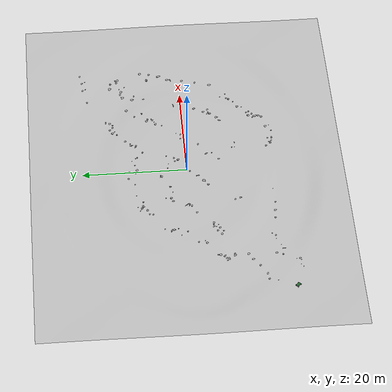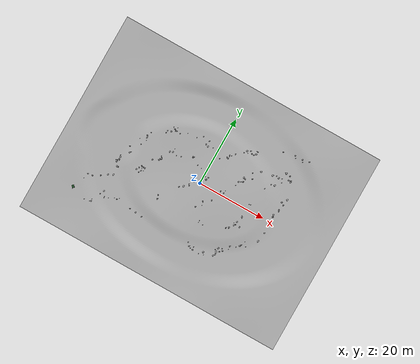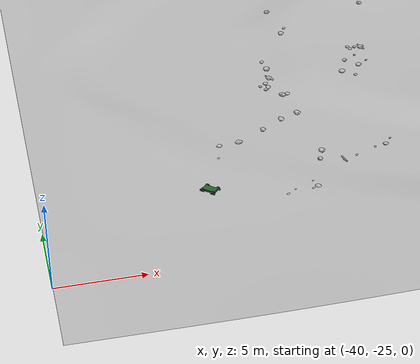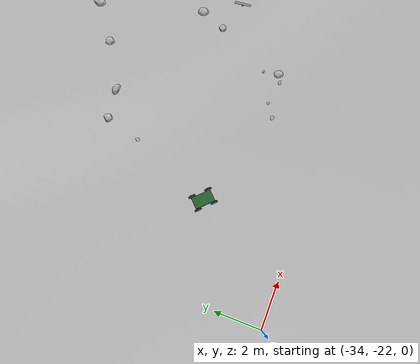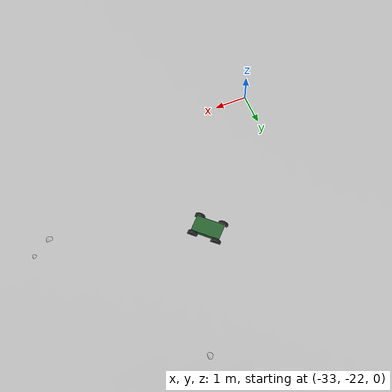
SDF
<?xml version='1.0' encoding='utf-8'?>
<sdf version="1.9">
  <world name="nomad_forest">
    <gravity>0 0 -9.81</gravity>
    <physics name="nomad_physics" type="ignored">
      <max_step_size>0.0016666666666666668</max_step_size>
      <real_time_factor>1</real_time_factor>
    </physics>
    <plugin filename="gz-sim-physics-system" name="gz::sim::systems::Physics" />
    <plugin filename="gz-sim-user-commands-system" name="gz::sim::systems::UserCommands" />
    <plugin filename="gz-sim-scene-broadcaster-system" name="gz::sim::systems::SceneBroadcaster" />
    <plugin filename="gz-sim-sensors-system" name="gz::sim::systems::Sensors">
      <render_engine>ogre2</render_engine>
    </plugin>
    <plugin filename="gz-sim-imu-system" name="gz::sim::systems::Imu" />
    <scene>
      <ambient>0.6 0.6 0.6 1</ambient>
      <background>0.62 0.75 0.86 1</background>
      <shadows>false</shadows>
    </scene>
    <light name="sun" type="directional">
      <pose>0 0 20 0 0 0</pose>
      <diffuse>0.8 0.8 0.8 1</diffuse>
      <specular>0.1 0.1 0.1 1</specular>
      <direction>-0.4 -0.2 -1</direction>
      <cast_shadows>false</cast_shadows>
    </light>
    <gui fullscreen="false">
      <plugin filename="MinimalScene" name="3D View">
        <gz-gui>
          <title>3D View</title>
          <property type="bool" key="showTitleBar">false</property>
          <property type="string" key="state">docked</property>
        </gz-gui>
        <engine>ogre2</engine>
        <scene>scene</scene>
        <ambient_light>0.6 0.6 0.6</ambient_light>
        <background_color>0.62 0.75 0.86</background_color>
        <camera_pose>-43 -38 48 0 0.70 0.72</camera_pose>
      </plugin>
      <plugin filename="GzSceneManager" name="GzSceneManager">
        <gz-gui>
          <property type="string" key="state">floating</property>
          <property type="bool" key="showTitleBar">false</property>
          <property type="bool" key="resizable">false</property>
          <property type="double" key="height">5</property>
          <property type="double" key="width">5</property>
        </gz-gui>
      </plugin>
      <plugin filename="InteractiveViewControl" name="InteractiveViewControl">
        <gz-gui>
          <property type="string" key="state">floating</property>
          <property type="bool" key="showTitleBar">false</property>
          <property type="bool" key="resizable">false</property>
          <property type="double" key="height">5</property>
          <property type="double" key="width">5</property>
        </gz-gui>
      </plugin>
      <plugin filename="CameraTracking" name="CameraTracking">
        <gz-gui>
          <property type="string" key="state">floating</property>
          <property type="bool" key="showTitleBar">false</property>
          <property type="bool" key="resizable">false</property>
          <property type="double" key="height">5</property>
          <property type="double" key="width">5</property>
        </gz-gui>
      </plugin>
      <plugin filename="EntityContextMenuPlugin" name="EntityContextMenuPlugin">
        <gz-gui>
          <property type="string" key="state">floating</property>
          <property type="bool" key="showTitleBar">false</property>
          <property type="bool" key="resizable">false</property>
          <property type="double" key="height">5</property>
          <property type="double" key="width">5</property>
        </gz-gui>
      </plugin>
      <plugin filename="SelectEntities" name="SelectEntities">
        <gz-gui>
          <property type="string" key="state">floating</property>
          <property type="bool" key="showTitleBar">false</property>
          <property type="bool" key="resizable">false</property>
          <property type="double" key="height">5</property>
          <property type="double" key="width">5</property>
        </gz-gui>
      </plugin>
      <plugin filename="WorldControl" name="WorldControl">
        <gz-gui>
          <property type="string" key="state">floating</property>
          <property type="bool" key="showTitleBar">false</property>
          <property type="bool" key="resizable">false</property>
          <property type="double" key="height">72</property>
          <property type="double" key="width">180</property>
          <property type="double" key="z">1</property>
          <anchors target="3D View">
            <line own="left" target="left" />
            <line own="bottom" target="bottom" />
          </anchors>
        </gz-gui>
        <play_pause>true</play_pause>
        <step>true</step>
        <start_paused>false</start_paused>
      </plugin>
      <plugin filename="WorldStats" name="WorldStats">
        <gz-gui>
          <property type="string" key="state">floating</property>
          <property type="bool" key="showTitleBar">false</property>
          <property type="bool" key="resizable">false</property>
          <property type="double" key="height">110</property>
          <property type="double" key="width">290</property>
          <property type="double" key="z">1</property>
          <anchors target="3D View">
            <line own="right" target="right" />
            <line own="bottom" target="bottom" />
          </anchors>
        </gz-gui>
        <sim_time>true</sim_time>
        <real_time>true</real_time>
        <real_time_factor>true</real_time_factor>
        <iterations>true</iterations>
      </plugin>
      <plugin filename="EntityTree" name="EntityTree">
        <gz-gui />
      </plugin>
      <plugin filename="ComponentInspector" name="ComponentInspector">
        <gz-gui />
      </plugin>
    </gui>
    <model name="terrain">
      <static>true</static>
      <pose>0 0 0 0 0 0</pose>
      <link name="link">
        <visual name="dirt_terrain">
          <geometry>
            <mesh>
              <uri>../assets/geometry/terrain.obj</uri>
            </mesh>
          </geometry>
        </visual>
        <collision name="terrain_collision">
          <geometry>
            <mesh>
              <uri>../assets/geometry/terrain.obj</uri>
            </mesh>
          </geometry>
        </collision>
      </link>
    </model>
    <model name="roadside_details">
      <static>true</static>
      <pose>0 0 0 0 0 0</pose>
      <link name="link">
        <visual name="visual_only">
          <geometry>
            <mesh>
              <uri>../assets/geometry/roadside_details.obj</uri>
            </mesh>
          </geometry>
        </visual>
      </link>
    </model>
    <include>
      <uri>../models/nomad_vehicle/model.sdf</uri>
      <name>nomad_vehicle</name>
      <pose>-30.0 -18.0 0.03 0 0 -0.7705162004864949</pose>
    </include>
  </world>
</sdf>

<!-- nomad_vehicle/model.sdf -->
<sdf version="1.10">
  <model name="nomad_vehicle" canonical_link="base_link">
    <!--PROVISIONAL dimensions/masses, no suspension; NOT calibrated motor output.-->
    <static>false</static>
    <self_collide>false</self_collide>
    <link name="base_link">
      <pose relative_to="__model__">0 0 0 0 0 0</pose>
      <inertial>
        <pose>0 0 0.2 0 0 0</pose>
        <mass>30</mass>
        <inertia>
          <ixx>0.661</ixx>
          <iyy>1.84225</iyy>
          <izz>2.43125</izz>
          <ixy>0</ixy>
          <ixz>0</ixz>
          <iyz>0</iyz>
        </inertia>
      </inertial>
      <visual name="base_link_visual">
        <pose>0 0 0.2 0 0 0</pose>
        <geometry>
          <box>
            <size>0.85 0.5 0.12</size>
          </box>
        </geometry>
        <material>
          <ambient>0.15 0.38 0.18 1</ambient>
          <diffuse>0.15 0.38 0.18 1</diffuse>
        </material>
      </visual>
      <collision name="base_link_collision">
        <pose>0 0 0.2 0 0 0</pose>
        <geometry>
          <box>
            <size>0.85 0.5 0.12</size>
          </box>
        </geometry>
      </collision>
      <sensor name="oak_rgb" type="rgbd_camera">
        <pose relative_to="base_link">0.46 0 0.29 0 0 0</pose>
        <always_on>true</always_on>
        <update_rate>30</update_rate>
        <visualize>false</visualize>
        <topic>/nomad/raw/oak/rgbd</topic>
        <gz_frame_id>oak_rgb_optical_frame</gz_frame_id>
        <camera>
          <optical_frame_id>oak_rgb_optical_frame</optical_frame_id>
          <horizontal_fov>1.20427718387609</horizontal_fov>
          <image>
            <width>640</width>
            <height>480</height>
            <format>R8G8B8</format>
          </image>
          <clip>
            <near>0.05</near>
            <far>40</far>
          </clip>
          <depth_camera>
            <clip>
              <near>0.4</near>
              <far>8</far>
            </clip>
          </depth_camera>
          <lens>
            <type>gnomonical</type>
            <intrinsics>
              <fx>465.602889175182</fx>
              <fy>471.026521321236</fy>
              <cx>320</cx>
              <cy>240</cy>
              <s>0</s>
            </intrinsics>
            <projection>
              <p_fx>465.602889175182</p_fx>
              <p_fy>471.026521321236</p_fy>
              <p_cx>320</p_cx>
              <p_cy>240</p_cy>
              <tx>0</tx>
              <ty>0</ty>
            </projection>
          </lens>
        </camera>
      </sensor>
      <sensor name="oak_left" type="camera">
        <pose relative_to="base_link">0.46 0.0375 0.29 0 0 0</pose>
        <always_on>true</always_on>
        <update_rate>30</update_rate>
        <visualize>false</visualize>
        <topic>/nomad/raw/oak/left/image_raw</topic>
        <gz_frame_id>oak_left_optical_frame</gz_frame_id>
        <camera>
          <optical_frame_id>oak_left_optical_frame</optical_frame_id>
          <camera_info_topic>/nomad/raw/oak/left/camera_info</camera_info_topic>
          <horizontal_fov>1.27409035395586</horizontal_fov>
          <image>
            <width>640</width>
            <height>480</height>
            <format>L8</format>
          </image>
          <clip>
            <near>0.05</near>
            <far>40</far>
          </clip>
          <lens>
            <type>gnomonical</type>
            <intrinsics>
              <fx>432.455180142659</fx>
              <fy>432.971461265142</fy>
              <cx>320</cx>
              <cy>240</cy>
              <s>0</s>
            </intrinsics>
            <projection>
              <p_fx>432.455180142659</p_fx>
              <p_fy>432.971461265142</p_fy>
              <p_cx>320</p_cx>
              <p_cy>240</p_cy>
              <tx>0</tx>
              <ty>0</ty>
            </projection>
          </lens>
        </camera>
      </sensor>
      <sensor name="oak_right" type="camera">
        <pose relative_to="base_link">0.46 -0.0375 0.29 0 0 0</pose>
        <always_on>true</always_on>
        <update_rate>30</update_rate>
        <visualize>false</visualize>
        <topic>/nomad/raw/oak/right/image_raw</topic>
        <gz_frame_id>oak_right_optical_frame</gz_frame_id>
        <camera>
          <optical_frame_id>oak_right_optical_frame</optical_frame_id>
          <camera_info_topic>/nomad/raw/oak/right/camera_info</camera_info_topic>
          <horizontal_fov>1.27409035395586</horizontal_fov>
          <image>
            <width>640</width>
            <height>480</height>
            <format>L8</format>
          </image>
          <clip>
            <near>0.05</near>
            <far>40</far>
          </clip>
          <lens>
            <type>gnomonical</type>
            <intrinsics>
              <fx>432.455180142659</fx>
              <fy>432.971461265142</fy>
              <cx>320</cx>
              <cy>240</cy>
              <s>0</s>
            </intrinsics>
            <projection>
              <p_fx>432.455180142659</p_fx>
              <p_fy>432.971461265142</p_fy>
              <p_cx>320</p_cx>
              <p_cy>240</p_cy>
              <tx>-32.4341385106994</tx>
              <ty>0</ty>
            </projection>
          </lens>
        </camera>
      </sensor>
      <sensor name="ydlidar_g2" type="gpu_lidar">
        <pose relative_to="base_link">0.15 0 0.38 0 0 0</pose>
        <topic>/nomad/raw/scan</topic>
        <gz_frame_id>scan</gz_frame_id>
        <always_on>true</always_on>
        <update_rate>10</update_rate>
        <visualize>false</visualize>
        <lidar>
          <scan>
            <horizontal>
              <samples>500</samples>
              <resolution>1</resolution>
              <min_angle>-3.14159265358979</min_angle>
              <max_angle>3.12902628297543</max_angle>
            </horizontal>
            <vertical>
              <samples>1</samples>
              <resolution>1</resolution>
              <min_angle>0</min_angle>
              <max_angle>0</max_angle>
            </vertical>
          </scan>
          <range>
            <min>0.12</min>
            <max>12</max>
            <resolution>0.01</resolution>
          </range>
          <noise>
            <type>gaussian</type>
            <mean>0</mean>
            <stddev>0.01</stddev>
          </noise>
        </lidar>
      </sensor>
      <sensor name="oak_imu" type="imu">
        <pose relative_to="base_link">0.46 0 0.29 0 0 0</pose>
        <always_on>true</always_on>
        <update_rate>200</update_rate>
        <topic>/nomad/raw/oak/imu</topic>
        <gz_frame_id>oak_imu_frame</gz_frame_id>
        <imu />
      </sensor>
    </link>
    <link name="front_left_steering_link">
      <pose relative_to="__model__">0.36 0.3 0.15 0 0 0</pose>
      <inertial>
        <pose>0 0 0 0 0 0</pose>
        <mass>0.3</mass>
        <inertia>
          <ixx>8.6875e-05</ixx>
          <iyy>8.6875e-05</iyy>
          <izz>9.375e-05</izz>
          <ixy>0</ixy>
          <ixz>0</ixz>
          <iyz>0</iyz>
        </inertia>
      </inertial>
      <visual name="front_left_steering_link_visual">
        <pose>0 0 0 0 0 0</pose>
        <geometry>
          <cylinder>
            <radius>0.025</radius>
            <length>0.04</length>
          </cylinder>
        </geometry>
        <material>
          <ambient>0.12 0.12 0.12 1</ambient>
          <diffuse>0.12 0.12 0.12 1</diffuse>
        </material>
      </visual>
    </link>
    <link name="front_left_wheel">
      <pose relative_to="__model__">0.36 0.3 0.15 0 0 0</pose>
      <inertial>
        <pose>0 0 0 0 0 0</pose>
        <mass>1</mass>
        <inertia>
          <ixx>0.00615833333333333</ixx>
          <iyy>0.01125</iyy>
          <izz>0.00615833333333333</izz>
          <ixy>0</ixy>
          <ixz>0</ixz>
          <iyz>0</iyz>
        </inertia>
      </inertial>
      <visual name="front_left_wheel_visual">
        <pose>0 0 0 1.5707963267949 0 0</pose>
        <geometry>
          <cylinder>
            <radius>0.15</radius>
            <length>0.08</length>
          </cylinder>
        </geometry>
        <material>
          <ambient>0.12 0.12 0.12 1</ambient>
          <diffuse>0.12 0.12 0.12 1</diffuse>
        </material>
      </visual>
      <collision name="front_left_wheel_collision">
        <pose>0 0 0 1.5707963267949 0 0</pose>
        <geometry>
          <cylinder>
            <radius>0.15</radius>
            <length>0.08</length>
          </cylinder>
        </geometry>
        <surface>
          <friction>
            <ode>
              <mu>1</mu>
              <mu2>1</mu2>
            </ode>
          </friction>
        </surface>
      </collision>
    </link>
    <link name="front_right_steering_link">
      <pose relative_to="__model__">0.36 -0.3 0.15 0 0 0</pose>
      <inertial>
        <pose>0 0 0 0 0 0</pose>
        <mass>0.3</mass>
        <inertia>
          <ixx>8.6875e-05</ixx>
          <iyy>8.6875e-05</iyy>
          <izz>9.375e-05</izz>
          <ixy>0</ixy>
          <ixz>0</ixz>
          <iyz>0</iyz>
        </inertia>
      </inertial>
      <visual name="front_right_steering_link_visual">
        <pose>0 0 0 0 0 0</pose>
        <geometry>
          <cylinder>
            <radius>0.025</radius>
            <length>0.04</length>
          </cylinder>
        </geometry>
        <material>
          <ambient>0.12 0.12 0.12 1</ambient>
          <diffuse>0.12 0.12 0.12 1</diffuse>
        </material>
      </visual>
    </link>
    <link name="front_right_wheel">
      <pose relative_to="__model__">0.36 -0.3 0.15 0 0 0</pose>
      <inertial>
        <pose>0 0 0 0 0 0</pose>
        <mass>1</mass>
        <inertia>
          <ixx>0.00615833333333333</ixx>
          <iyy>0.01125</iyy>
          <izz>0.00615833333333333</izz>
          <ixy>0</ixy>
          <ixz>0</ixz>
          <iyz>0</iyz>
        </inertia>
      </inertial>
      <visual name="front_right_wheel_visual">
        <pose>0 0 0 1.5707963267949 0 0</pose>
        <geometry>
          <cylinder>
            <radius>0.15</radius>
            <length>0.08</length>
          </cylinder>
        </geometry>
        <material>
          <ambient>0.12 0.12 0.12 1</ambient>
          <diffuse>0.12 0.12 0.12 1</diffuse>
        </material>
      </visual>
      <collision name="front_right_wheel_collision">
        <pose>0 0 0 1.5707963267949 0 0</pose>
        <geometry>
          <cylinder>
            <radius>0.15</radius>
            <length>0.08</length>
          </cylinder>
        </geometry>
        <surface>
          <friction>
            <ode>
              <mu>1</mu>
              <mu2>1</mu2>
            </ode>
          </friction>
        </surface>
      </collision>
    </link>
    <link name="rear_left_wheel">
      <pose relative_to="__model__">-0.36 0.3 0.15 0 0 0</pose>
      <inertial>
        <pose>0 0 0 0 0 0</pose>
        <mass>1</mass>
        <inertia>
          <ixx>0.00615833333333333</ixx>
          <iyy>0.01125</iyy>
          <izz>0.00615833333333333</izz>
          <ixy>0</ixy>
          <ixz>0</ixz>
          <iyz>0</iyz>
        </inertia>
      </inertial>
      <visual name="rear_left_wheel_visual">
        <pose>0 0 0 1.5707963267949 0 0</pose>
        <geometry>
          <cylinder>
            <radius>0.15</radius>
            <length>0.08</length>
          </cylinder>
        </geometry>
        <material>
          <ambient>0.12 0.12 0.12 1</ambient>
          <diffuse>0.12 0.12 0.12 1</diffuse>
        </material>
      </visual>
      <collision name="rear_left_wheel_collision">
        <pose>0 0 0 1.5707963267949 0 0</pose>
        <geometry>
          <cylinder>
            <radius>0.15</radius>
            <length>0.08</length>
          </cylinder>
        </geometry>
        <surface>
          <friction>
            <ode>
              <mu>1</mu>
              <mu2>1</mu2>
            </ode>
          </friction>
        </surface>
      </collision>
    </link>
    <link name="rear_right_wheel">
      <pose relative_to="__model__">-0.36 -0.3 0.15 0 0 0</pose>
      <inertial>
        <pose>0 0 0 0 0 0</pose>
        <mass>1</mass>
        <inertia>
          <ixx>0.00615833333333333</ixx>
          <iyy>0.01125</iyy>
          <izz>0.00615833333333333</izz>
          <ixy>0</ixy>
          <ixz>0</ixz>
          <iyz>0</iyz>
        </inertia>
      </inertial>
      <visual name="rear_right_wheel_visual">
        <pose>0 0 0 1.5707963267949 0 0</pose>
        <geometry>
          <cylinder>
            <radius>0.15</radius>
            <length>0.08</length>
          </cylinder>
        </geometry>
        <material>
          <ambient>0.12 0.12 0.12 1</ambient>
          <diffuse>0.12 0.12 0.12 1</diffuse>
        </material>
      </visual>
      <collision name="rear_right_wheel_collision">
        <pose>0 0 0 1.5707963267949 0 0</pose>
        <geometry>
          <cylinder>
            <radius>0.15</radius>
            <length>0.08</length>
          </cylinder>
        </geometry>
        <surface>
          <friction>
            <ode>
              <mu>1</mu>
              <mu2>1</mu2>
            </ode>
          </friction>
        </surface>
      </collision>
    </link>
    <joint name="front_left_steering_joint" type="revolute">
      <parent>base_link</parent>
      <child>front_left_steering_link</child>
      <pose relative_to="front_left_steering_link">0 0 0 0 0 0</pose>
      <axis>
        <xyz>0 0 1</xyz>
        <limit>
          <lower>-0.55</lower>
          <upper>0.55</upper>
          <effort>12</effort>
          <velocity>2</velocity>
        </limit>
        <dynamics>
          <damping>0.02</damping>
        </dynamics>
      </axis>
    </joint>
    <joint name="front_left_wheel_joint" type="revolute">
      <parent>front_left_steering_link</parent>
      <child>front_left_wheel</child>
      <pose relative_to="front_left_wheel">0 0 0 0 0 0</pose>
      <axis>
        <xyz>0 1 0</xyz>
        <limit>
          <lower>-1e+16</lower>
          <upper>1e+16</upper>
          <effort>20</effort>
          <velocity>20</velocity>
        </limit>
        <dynamics>
          <damping>0.02</damping>
        </dynamics>
      </axis>
    </joint>
    <joint name="front_right_steering_joint" type="revolute">
      <parent>base_link</parent>
      <child>front_right_steering_link</child>
      <pose relative_to="front_right_steering_link">0 0 0 0 0 0</pose>
      <axis>
        <xyz>0 0 1</xyz>
        <limit>
          <lower>-0.55</lower>
          <upper>0.55</upper>
          <effort>12</effort>
          <velocity>2</velocity>
        </limit>
        <dynamics>
          <damping>0.02</damping>
        </dynamics>
      </axis>
    </joint>
    <joint name="front_right_wheel_joint" type="revolute">
      <parent>front_right_steering_link</parent>
      <child>front_right_wheel</child>
      <pose relative_to="front_right_wheel">0 0 0 0 0 0</pose>
      <axis>
        <xyz>0 1 0</xyz>
        <limit>
          <lower>-1e+16</lower>
          <upper>1e+16</upper>
          <effort>20</effort>
          <velocity>20</velocity>
        </limit>
        <dynamics>
          <damping>0.02</damping>
        </dynamics>
      </axis>
    </joint>
    <joint name="rear_left_wheel_joint" type="revolute">
      <parent>base_link</parent>
      <child>rear_left_wheel</child>
      <pose relative_to="rear_left_wheel">0 0 0 0 0 0</pose>
      <axis>
        <xyz>0 1 0</xyz>
        <limit>
          <lower>-1e+16</lower>
          <upper>1e+16</upper>
          <effort>20</effort>
          <velocity>20</velocity>
        </limit>
        <dynamics>
          <damping>0.02</damping>
        </dynamics>
      </axis>
    </joint>
    <joint name="rear_right_wheel_joint" type="revolute">
      <parent>base_link</parent>
      <child>rear_right_wheel</child>
      <pose relative_to="rear_right_wheel">0 0 0 0 0 0</pose>
      <axis>
        <xyz>0 1 0</xyz>
        <limit>
          <lower>-1e+16</lower>
          <upper>1e+16</upper>
          <effort>20</effort>
          <velocity>20</velocity>
        </limit>
        <dynamics>
          <damping>0.02</damping>
        </dynamics>
      </axis>
    </joint>
    <frame name="oak_rgb_optical_frame" attached_to="base_link">
      <pose relative_to="base_link">0.46 0 0.29 -1.5707963267949 0 -1.5707963267949</pose>
    </frame>
    <frame name="oak_depth_optical_frame" attached_to="base_link">
      <pose relative_to="base_link">0.46 0 0.29 -1.5707963267949 0 -1.5707963267949</pose>
    </frame>
    <frame name="oak_left_optical_frame" attached_to="base_link">
      <pose relative_to="base_link">0.46 0.0375 0.29 -1.5707963267949 0 -1.5707963267949</pose>
    </frame>
    <frame name="oak_right_optical_frame" attached_to="base_link">
      <pose relative_to="base_link">0.46 -0.0375 0.29 -1.5707963267949 0 -1.5707963267949</pose>
    </frame>
    <frame name="scan" attached_to="base_link">
      <pose relative_to="base_link">0.15 0 0.38 0 0 0</pose>
    </frame>
    <frame name="oak_imu_frame" attached_to="base_link">
      <pose relative_to="base_link">0.46 0 0.29 0 0 0</pose>
    </frame>
    <plugin filename="gz-sim-ackermann-steering-system" name="gz::sim::systems::AckermannSteering">
      <left_joint>rear_left_wheel_joint</left_joint>
      <right_joint>rear_right_wheel_joint</right_joint>
      <left_steering_joint>front_left_steering_joint</left_steering_joint>
      <right_steering_joint>front_right_steering_joint</right_steering_joint>
      <wheel_base>0.72</wheel_base>
      <wheel_separation>0.6</wheel_separation>
      <kingpin_width>0.6</kingpin_width>
      <wheel_radius>0.15</wheel_radius>
      <steering_limit>0.55</steering_limit>
      <min_velocity>-1</min_velocity>
      <max_velocity>1</max_velocity>
      <min_acceleration>-0.6</min_acceleration>
      <max_acceleration>0.6</max_acceleration>
      <topic>/nomad/vehicle/cmd_vel</topic>
      <odom_topic>/nomad/vehicle/wheel_odom</odom_topic>
      <tf_topic>/nomad/vehicle/wheel_tf</tf_topic>
      <frame_id>odom</frame_id>
      <child_frame_id>base_link</child_frame_id>
      <odom_publish_frequency>50</odom_publish_frequency>
    </plugin>
    <plugin filename="gz-sim-odometry-publisher-system" name="gz::sim::systems::OdometryPublisher">
      <dimensions>3</dimensions>
      <odom_frame>odom</odom_frame>
      <robot_base_frame>base_link</robot_base_frame>
      <odom_topic>/nomad/vehicle/odom</odom_topic>
      <tf_topic>/nomad/vehicle/tf</tf_topic>
      <odom_publish_frequency>50</odom_publish_frequency>
      <gaussian_noise>0</gaussian_noise>
    </plugin>
    <plugin filename="gz-sim-joint-state-publisher-system" name="gz::sim::systems::JointStatePublisher">
      <topic>/nomad/vehicle/joint_states</topic>
      <update_rate>50</update_rate>
      <joint_name>front_left_steering_joint</joint_name>
      <joint_name>front_left_wheel_joint</joint_name>
      <joint_name>front_right_steering_joint</joint_name>
      <joint_name>front_right_wheel_joint</joint_name>
      <joint_name>rear_left_wheel_joint</joint_name>
      <joint_name>rear_right_wheel_joint</joint_name>
    </plugin>
  </model>
</sdf>
